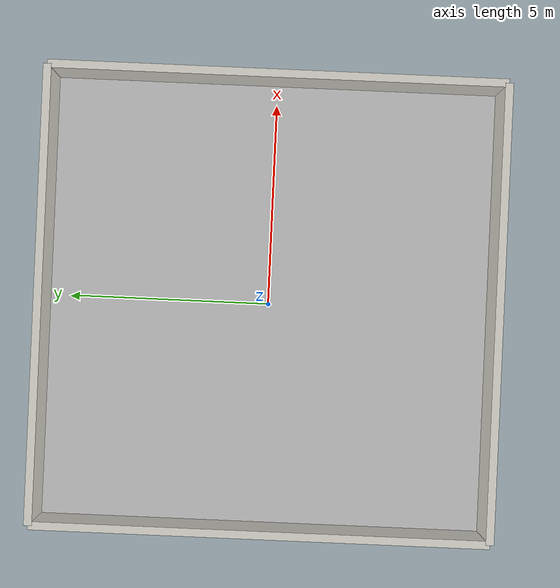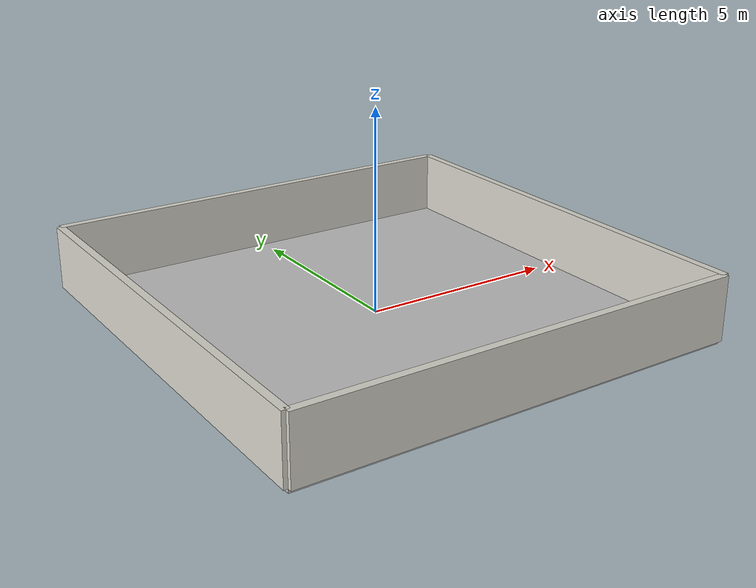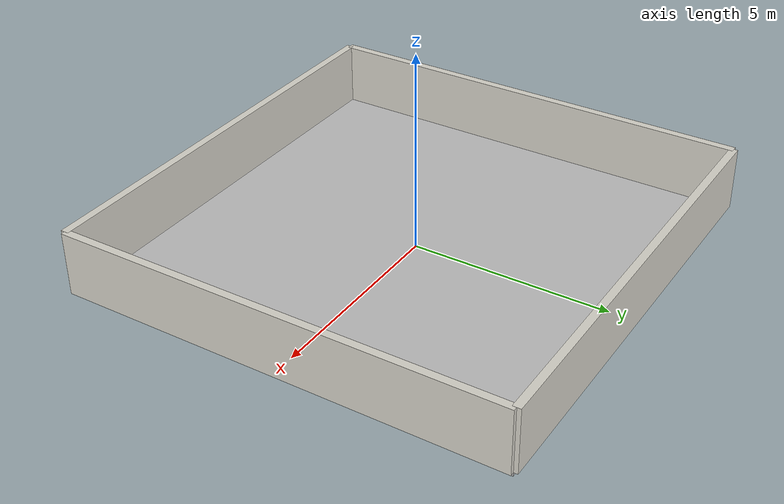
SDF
<sdf version="1.6">
 <world name="lidar_test_world">
  <light name="sun_light" type="directional">
   <pose>0 0 10 0 0 0</pose>
   <diffuse>0.9 0.9 0.9 1</diffuse>
   <specular>0.2 0.2 0.2 1</specular>
   <attenuation>
    <range>1000</range>
    <constant>0.9</constant>
    <linear>0.01</linear>
    <quadratic>0.001</quadratic>
   </attenuation>
   <direction>-0.35 0.1 -0.9</direction>
  </light>
  <physics name="default_physics" type="ode">
   <max_step_size>0.001</max_step_size>
   <real_time_factor>1.0</real_time_factor>
  </physics>
  <plugin filename="ignition-gazebo-physics-system" name="ignition::gazebo::systems::Physics"/>
  <plugin filename="ignition-gazebo-user-commands-system" name="ignition::gazebo::systems::UserCommands"/>
  <plugin filename="ignition-gazebo-scene-broadcaster-system" name="ignition::gazebo::systems::SceneBroadcaster"/>
  <plugin filename="ignition-gazebo-sensors-system" name="ignition::gazebo::systems::Sensors">
   <render_engine>ogre2</render_engine>
  </plugin>
  <plugin filename="ignition-gazebo-imu-system" name="ignition::gazebo::systems::Imu"/>
  <model name="room_floor">
   <static>true</static>
   <link name="floor_link">
    <collision name="floor_collision"><geometry><box><size>11.2 11.2 0.1</size></box></geometry></collision>
    <visual name="floor_visual">
     <geometry><box><size>11.2 11.2 0.1</size></box></geometry>
     <material><ambient>0.7 0.7 0.7 1</ambient><diffuse>0.75 0.75 0.75 1</diffuse></material>
    </visual>
    <pose>0 0 -0.05 0 0 0</pose>
   </link>
  </model>
  <model name="north_wall">
   <static>true</static>
   <pose>0 5.6 0.8 0 0 0</pose>
   <link name="wall_link">
    <collision name="collision"><geometry><box><size>11.2 0.2 1.6</size></box></geometry></collision>
    <visual name="visual">
     <geometry><box><size>11.2 0.2 1.6</size></box></geometry>
     <material><ambient>0.85 0.84 0.8 1</ambient><diffuse>0.85 0.84 0.8 1</diffuse></material>
    </visual>
   </link>
  </model>
  <model name="south_wall">
   <static>true</static>
   <pose>0 -5.6 0.8 0 0 0</pose>
   <link name="wall_link">
    <collision name="collision"><geometry><box><size>11.2 0.2 1.6</size></box></geometry></collision>
    <visual name="visual">
     <geometry><box><size>11.2 0.2 1.6</size></box></geometry>
     <material><ambient>0.85 0.84 0.8 1</ambient><diffuse>0.85 0.84 0.8 1</diffuse></material>
    </visual>
   </link>
  </model>
  <model name="east_wall">
   <static>true</static>
   <pose>5.6 0 0.8 0 0 0</pose>
   <link name="wall_link">
    <collision name="collision"><geometry><box><size>0.2 11.2 1.6</size></box></geometry></collision>
    <visual name="visual">
     <geometry><box><size>0.2 11.2 1.6</size></box></geometry>
     <material><ambient>0.85 0.84 0.8 1</ambient><diffuse>0.85 0.84 0.8 1</diffuse></material>
    </visual>
   </link>
  </model>
  <model name="west_wall">
   <static>true</static>
   <pose>-5.6 0 0.8 0 0 0</pose>
   <link name="wall_link">
    <collision name="collision"><geometry><box><size>0.2 11.2 1.6</size></box></geometry></collision>
    <visual name="visual">
     <geometry><box><size>0.2 11.2 1.6</size></box></geometry>
     <material><ambient>0.85 0.84 0.8 1</ambient><diffuse>0.85 0.84 0.8 1</diffuse></material>
    </visual>
   </link>
  </model>
 </world>
</sdf>
